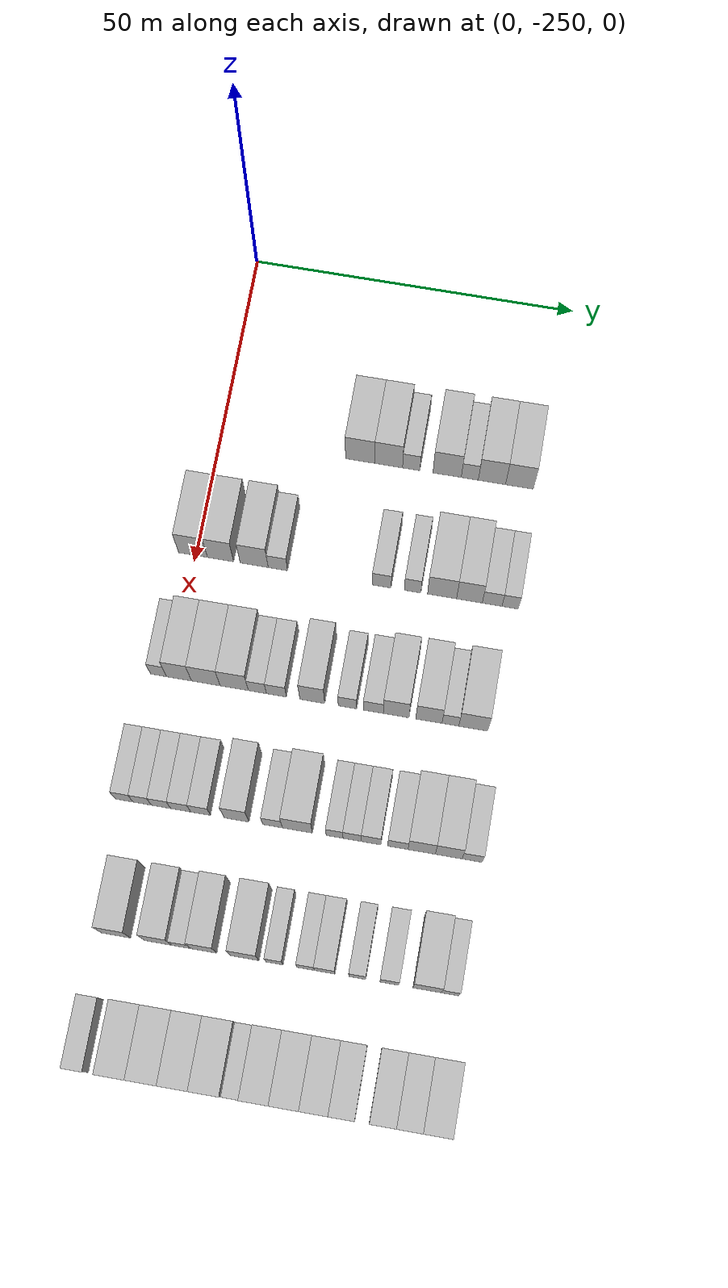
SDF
<sdf version="1.6">
 <world name="default">
  <model name="building_27">
   <static>1</static>
   <pose>25.0000 -228.3503 0 0.000000 0.000000 0.000000</pose>
   <link name="link">
    <pose>0 0 4.50 0 0 0</pose>
    <collision name="collision"><geometry><box><size>10.0000 4.4817 9.0000</size></box></geometry></collision>
    <visual name="visual">
     <cast_shadows>0</cast_shadows>
     <geometry><box><size>10.0000 4.4817 9.0000</size></box></geometry>
     <material>
      <script>
       <uri>model://HANNAS_wall/materials/scripts</uri>
       <uri>model://HANNAS_wall/materials/textures</uri>
       <name>vrc/HANNAS_wall</name>
      </script>
     </material>
    </visual>
   </link>
  </model>
  <model name="building_28">
   <static>1</static>
   <pose>25.0000 -223.9681 0 0.000000 0.000000 0.000000</pose>
   <link name="link">
    <pose>0 0 4.50 0 0 0</pose>
    <collision name="collision"><geometry><box><size>10.0000 4.2827 9.0000</size></box></geometry></collision>
    <visual name="visual">
     <cast_shadows>0</cast_shadows>
     <geometry><box><size>10.0000 4.2827 9.0000</size></box></geometry>
     <material>
      <script>
       <uri>model://HANNAS_wall/materials/scripts</uri>
       <uri>model://HANNAS_wall/materials/textures</uri>
       <name>vrc/HANNAS_wall</name>
      </script>
     </material>
    </visual>
   </link>
  </model>
  <model name="building_29">
   <static>1</static>
   <pose>25.0000 -220.4896 0 0.000000 0.000000 0.000000</pose>
   <link name="link">
    <pose>0 0 3.00 0 0 0</pose>
    <collision name="collision"><geometry><box><size>10.0000 2.6744 6.0000</size></box></geometry></collision>
    <visual name="visual">
     <cast_shadows>0</cast_shadows>
     <geometry><box><size>10.0000 2.6744 6.0000</size></box></geometry>
     <material>
      <script>
       <uri>model://HANNAS_wall/materials/scripts</uri>
       <uri>model://HANNAS_wall/materials/textures</uri>
       <name>vrc/HANNAS_wall</name>
      </script>
     </material>
    </visual>
   </link>
  </model>
  <model name="building_30">
   <static>1</static>
   <pose>25.0000 -214.9845 0 0.000000 0.000000 0.000000</pose>
   <link name="link">
    <pose>0 0 4.50 0 0 0</pose>
    <collision name="collision"><geometry><box><size>10.0000 4.3358 9.0000</size></box></geometry></collision>
    <visual name="visual">
     <cast_shadows>0</cast_shadows>
     <geometry><box><size>10.0000 4.3358 9.0000</size></box></geometry>
     <material>
      <script>
       <uri>model://HANNAS_wall/materials/scripts</uri>
       <uri>model://HANNAS_wall/materials/textures</uri>
       <name>vrc/HANNAS_wall</name>
      </script>
     </material>
    </visual>
   </link>
  </model>
  <model name="building_31">
   <static>1</static>
   <pose>25.0000 -211.5119 0 0.000000 0.000000 0.000000</pose>
   <link name="link">
    <pose>0 0 3.00 0 0 0</pose>
    <collision name="collision"><geometry><box><size>10.0000 2.6095 6.0000</size></box></geometry></collision>
    <visual name="visual">
     <cast_shadows>0</cast_shadows>
     <geometry><box><size>10.0000 2.6095 6.0000</size></box></geometry>
     <material>
      <script>
       <uri>model://HANNAS_wall/materials/scripts</uri>
       <uri>model://HANNAS_wall/materials/textures</uri>
       <name>vrc/HANNAS_wall</name>
      </script>
     </material>
    </visual>
   </link>
  </model>
  <model name="building_32">
   <static>1</static>
   <pose>25.0000 -208.1215 0 0.000000 0.000000 0.000000</pose>
   <link name="link">
    <pose>0 0 4.50 0 0 0</pose>
    <collision name="collision"><geometry><box><size>10.0000 4.1712 9.0000</size></box></geometry></collision>
    <visual name="visual">
     <cast_shadows>0</cast_shadows>
     <geometry><box><size>10.0000 4.1712 9.0000</size></box></geometry>
     <material>
      <script>
       <uri>model://HANNAS_wall/materials/scripts</uri>
       <uri>model://HANNAS_wall/materials/textures</uri>
       <name>vrc/HANNAS_wall</name>
      </script>
     </material>
    </visual>
   </link>
  </model>
  <model name="building_33">
   <static>1</static>
   <pose>25.0000 -203.9128 0 0.000000 0.000000 0.000000</pose>
   <link name="link">
    <pose>0 0 4.50 0 0 0</pose>
    <collision name="collision"><geometry><box><size>10.0000 4.2463 9.0000</size></box></geometry></collision>
    <visual name="visual">
     <cast_shadows>0</cast_shadows>
     <geometry><box><size>10.0000 4.2463 9.0000</size></box></geometry>
     <material>
      <script>
       <uri>model://HANNAS_wall/materials/scripts</uri>
       <uri>model://HANNAS_wall/materials/textures</uri>
       <name>vrc/HANNAS_wall</name>
      </script>
     </material>
    </visual>
   </link>
  </model>
  <model name="building_186">
   <static>1</static>
   <pose>44.0000 -250.4299 0 0.000000 0.000000 0.000000</pose>
   <link name="link">
    <pose>0 0 4.50 0 0 0</pose>
    <collision name="collision"><geometry><box><size>10.0000 4.3926 9.0000</size></box></geometry></collision>
    <visual name="visual">
     <cast_shadows>0</cast_shadows>
     <geometry><box><size>10.0000 4.3926 9.0000</size></box></geometry>
     <material>
      <script>
       <uri>model://HANNAS_wall/materials/scripts</uri>
       <uri>model://HANNAS_wall/materials/textures</uri>
       <name>vrc/HANNAS_wall</name>
      </script>
     </material>
    </visual>
   </link>
  </model>
  <model name="building_187">
   <static>1</static>
   <pose>44.0000 -246.2320 0 0.000000 0.000000 0.000000</pose>
   <link name="link">
    <pose>0 0 4.50 0 0 0</pose>
    <collision name="collision"><geometry><box><size>10.0000 4.0034 9.0000</size></box></geometry></collision>
    <visual name="visual">
     <cast_shadows>0</cast_shadows>
     <geometry><box><size>10.0000 4.0034 9.0000</size></box></geometry>
     <material>
      <script>
       <uri>model://HANNAS_wall/materials/scripts</uri>
       <uri>model://HANNAS_wall/materials/textures</uri>
       <name>vrc/HANNAS_wall</name>
      </script>
     </material>
    </visual>
   </link>
  </model>
  <model name="building_188">
   <static>1</static>
   <pose>44.0000 -241.1013 0 0.000000 0.000000 0.000000</pose>
   <link name="link">
    <pose>0 0 4.50 0 0 0</pose>
    <collision name="collision"><geometry><box><size>10.0000 4.2579 9.0000</size></box></geometry></collision>
    <visual name="visual">
     <cast_shadows>0</cast_shadows>
     <geometry><box><size>10.0000 4.2579 9.0000</size></box></geometry>
     <material>
      <script>
       <uri>model://HANNAS_wall/materials/scripts</uri>
       <uri>model://HANNAS_wall/materials/textures</uri>
       <name>vrc/HANNAS_wall</name>
      </script>
     </material>
    </visual>
   </link>
  </model>
  <model name="building_189">
   <static>1</static>
   <pose>44.0000 -237.5055 0 0.000000 0.000000 0.000000</pose>
   <link name="link">
    <pose>0 0 3.00 0 0 0</pose>
    <collision name="collision"><geometry><box><size>10.0000 2.9337 6.0000</size></box></geometry></collision>
    <visual name="visual">
     <cast_shadows>0</cast_shadows>
     <geometry><box><size>10.0000 2.9337 6.0000</size></box></geometry>
     <material>
      <script>
       <uri>model://HANNAS_wall/materials/scripts</uri>
       <uri>model://HANNAS_wall/materials/textures</uri>
       <name>vrc/HANNAS_wall</name>
      </script>
     </material>
    </visual>
   </link>
  </model>
  <model name="building_190">
   <static>1</static>
   <pose>44.0000 -221.7880 0 0.000000 0.000000 0.000000</pose>
   <link name="link">
    <pose>0 0 3.00 0 0 0</pose>
    <collision name="collision"><geometry><box><size>10.0000 2.8338 6.0000</size></box></geometry></collision>
    <visual name="visual">
     <cast_shadows>0</cast_shadows>
     <geometry><box><size>10.0000 2.8338 6.0000</size></box></geometry>
     <material>
      <script>
       <uri>model://HANNAS_wall/materials/scripts</uri>
       <uri>model://HANNAS_wall/materials/textures</uri>
       <name>vrc/HANNAS_wall</name>
      </script>
     </material>
    </visual>
   </link>
  </model>
  <model name="building_191">
   <static>1</static>
   <pose>44.0000 -217.1230 0 0.000000 0.000000 0.000000</pose>
   <link name="link">
    <pose>0 0 3.00 0 0 0</pose>
    <collision name="collision"><geometry><box><size>10.0000 2.4964 6.0000</size></box></geometry></collision>
    <visual name="visual">
     <cast_shadows>0</cast_shadows>
     <geometry><box><size>10.0000 2.4964 6.0000</size></box></geometry>
     <material>
      <script>
       <uri>model://HANNAS_wall/materials/scripts</uri>
       <uri>model://HANNAS_wall/materials/textures</uri>
       <name>vrc/HANNAS_wall</name>
      </script>
     </material>
    </visual>
   </link>
  </model>
  <model name="building_192">
   <static>1</static>
   <pose>44.0000 -212.6909 0 0.000000 0.000000 0.000000</pose>
   <link name="link">
    <pose>0 0 4.50 0 0 0</pose>
    <collision name="collision"><geometry><box><size>10.0000 4.3679 9.0000</size></box></geometry></collision>
    <visual name="visual">
     <cast_shadows>0</cast_shadows>
     <geometry><box><size>10.0000 4.3679 9.0000</size></box></geometry>
     <material>
      <script>
       <uri>model://HANNAS_wall/materials/scripts</uri>
       <uri>model://HANNAS_wall/materials/textures</uri>
       <name>vrc/HANNAS_wall</name>
      </script>
     </material>
    </visual>
   </link>
  </model>
  <model name="building_193">
   <static>1</static>
   <pose>44.0000 -208.5768 0 0.000000 0.000000 0.000000</pose>
   <link name="link">
    <pose>0 0 4.50 0 0 0</pose>
    <collision name="collision"><geometry><box><size>10.0000 3.8603 9.0000</size></box></geometry></collision>
    <visual name="visual">
     <cast_shadows>0</cast_shadows>
     <geometry><box><size>10.0000 3.8603 9.0000</size></box></geometry>
     <material>
      <script>
       <uri>model://HANNAS_wall/materials/scripts</uri>
       <uri>model://HANNAS_wall/materials/textures</uri>
       <name>vrc/HANNAS_wall</name>
      </script>
     </material>
    </visual>
   </link>
  </model>
  <model name="building_194">
   <static>1</static>
   <pose>44.0000 -205.1648 0 0.000000 0.000000 0.000000</pose>
   <link name="link">
    <pose>0 0 3.00 0 0 0</pose>
    <collision name="collision"><geometry><box><size>10.0000 2.9637 6.0000</size></box></geometry></collision>
    <visual name="visual">
     <cast_shadows>0</cast_shadows>
     <geometry><box><size>10.0000 2.9637 6.0000</size></box></geometry>
     <material>
      <script>
       <uri>model://HANNAS_wall/materials/scripts</uri>
       <uri>model://HANNAS_wall/materials/textures</uri>
       <name>vrc/HANNAS_wall</name>
      </script>
     </material>
    </visual>
   </link>
  </model>
  <model name="building_195">
   <static>1</static>
   <pose>44.0000 -202.4571 0 0.000000 0.000000 0.000000</pose>
   <link name="link">
    <pose>0 0 3.00 0 0 0</pose>
    <collision name="collision"><geometry><box><size>10.0000 2.4517 6.0000</size></box></geometry></collision>
    <visual name="visual">
     <cast_shadows>0</cast_shadows>
     <geometry><box><size>10.0000 2.4517 6.0000</size></box></geometry>
     <material>
      <script>
       <uri>model://HANNAS_wall/materials/scripts</uri>
       <uri>model://HANNAS_wall/materials/textures</uri>
       <name>vrc/HANNAS_wall</name>
      </script>
     </material>
    </visual>
   </link>
  </model>
  <model name="building_359">
   <static>1</static>
   <pose>63.0000 -251.7910 0 0.000000 0.000000 0.000000</pose>
   <link name="link">
    <pose>0 0 3.00 0 0 0</pose>
    <collision name="collision"><geometry><box><size>10.0000 2.4022 6.0000</size></box></geometry></collision>
    <visual name="visual">
     <cast_shadows>0</cast_shadows>
     <geometry><box><size>10.0000 2.4022 6.0000</size></box></geometry>
     <material>
      <script>
       <uri>model://HANNAS_wall/materials/scripts</uri>
       <uri>model://HANNAS_wall/materials/textures</uri>
       <name>vrc/HANNAS_wall</name>
      </script>
     </material>
    </visual>
   </link>
  </model>
  <model name="building_360">
   <static>1</static>
   <pose>63.0000 -248.7264 0 0.000000 0.000000 0.000000</pose>
   <link name="link">
    <pose>0 0 4.50 0 0 0</pose>
    <collision name="collision"><geometry><box><size>10.0000 3.7270 9.0000</size></box></geometry></collision>
    <visual name="visual">
     <cast_shadows>0</cast_shadows>
     <geometry><box><size>10.0000 3.7270 9.0000</size></box></geometry>
     <material>
      <script>
       <uri>model://HANNAS_wall/materials/scripts</uri>
       <uri>model://HANNAS_wall/materials/textures</uri>
       <name>vrc/HANNAS_wall</name>
      </script>
     </material>
    </visual>
   </link>
  </model>
  <model name="building_361">
   <static>1</static>
   <pose>63.0000 -244.7163 0 0.000000 0.000000 0.000000</pose>
   <link name="link">
    <pose>0 0 4.50 0 0 0</pose>
    <collision name="collision"><geometry><box><size>10.0000 4.2932 9.0000</size></box></geometry></collision>
    <visual name="visual">
     <cast_shadows>0</cast_shadows>
     <geometry><box><size>10.0000 4.2932 9.0000</size></box></geometry>
     <material>
      <script>
       <uri>model://HANNAS_wall/materials/scripts</uri>
       <uri>model://HANNAS_wall/materials/textures</uri>
       <name>vrc/HANNAS_wall</name>
      </script>
     </material>
    </visual>
   </link>
  </model>
  <model name="building_362">
   <static>1</static>
   <pose>63.0000 -240.4635 0 0.000000 0.000000 0.000000</pose>
   <link name="link">
    <pose>0 0 4.50 0 0 0</pose>
    <collision name="collision"><geometry><box><size>10.0000 4.2123 9.0000</size></box></geometry></collision>
    <visual name="visual">
     <cast_shadows>0</cast_shadows>
     <geometry><box><size>10.0000 4.2123 9.0000</size></box></geometry>
     <material>
      <script>
       <uri>model://HANNAS_wall/materials/scripts</uri>
       <uri>model://HANNAS_wall/materials/textures</uri>
       <name>vrc/HANNAS_wall</name>
      </script>
     </material>
    </visual>
   </link>
  </model>
  <model name="building_363">
   <static>1</static>
   <pose>63.0000 -237.0036 0 0.000000 0.000000 0.000000</pose>
   <link name="link">
    <pose>0 0 3.00 0 0 0</pose>
    <collision name="collision"><geometry><box><size>10.0000 2.7074 6.0000</size></box></geometry></collision>
    <visual name="visual">
     <cast_shadows>0</cast_shadows>
     <geometry><box><size>10.0000 2.7074 6.0000</size></box></geometry>
     <material>
      <script>
       <uri>model://HANNAS_wall/materials/scripts</uri>
       <uri>model://HANNAS_wall/materials/textures</uri>
       <name>vrc/HANNAS_wall</name>
      </script>
     </material>
    </visual>
   </link>
  </model>
  <model name="building_364">
   <static>1</static>
   <pose>63.0000 -234.1685 0 0.000000 0.000000 0.000000</pose>
   <link name="link">
    <pose>0 0 3.00 0 0 0</pose>
    <collision name="collision"><geometry><box><size>10.0000 2.9629 6.0000</size></box></geometry></collision>
    <visual name="visual">
     <cast_shadows>0</cast_shadows>
     <geometry><box><size>10.0000 2.9629 6.0000</size></box></geometry>
     <material>
      <script>
       <uri>model://HANNAS_wall/materials/scripts</uri>
       <uri>model://HANNAS_wall/materials/textures</uri>
       <name>vrc/HANNAS_wall</name>
      </script>
     </material>
    </visual>
   </link>
  </model>
  <model name="building_365">
   <static>1</static>
   <pose>63.0000 -228.8350 0 0.000000 0.000000 0.000000</pose>
   <link name="link">
    <pose>0 0 4.50 0 0 0</pose>
    <collision name="collision"><geometry><box><size>10.0000 3.7043 9.0000</size></box></geometry></collision>
    <visual name="visual">
     <cast_shadows>0</cast_shadows>
     <geometry><box><size>10.0000 3.7043 9.0000</size></box></geometry>
     <material>
      <script>
       <uri>model://HANNAS_wall/materials/scripts</uri>
       <uri>model://HANNAS_wall/materials/textures</uri>
       <name>vrc/HANNAS_wall</name>
      </script>
     </material>
    </visual>
   </link>
  </model>
  <model name="building_366">
   <static>1</static>
   <pose>63.0000 -223.6137 0 0.000000 0.000000 0.000000</pose>
   <link name="link">
    <pose>0 0 3.00 0 0 0</pose>
    <collision name="collision"><geometry><box><size>10.0000 2.7382 6.0000</size></box></geometry></collision>
    <visual name="visual">
     <cast_shadows>0</cast_shadows>
     <geometry><box><size>10.0000 2.7382 6.0000</size></box></geometry>
     <material>
      <script>
       <uri>model://HANNAS_wall/materials/scripts</uri>
       <uri>model://HANNAS_wall/materials/textures</uri>
       <name>vrc/HANNAS_wall</name>
      </script>
     </material>
    </visual>
   </link>
  </model>
  <model name="building_367">
   <static>1</static>
   <pose>63.0000 -219.7744 0 0.000000 0.000000 0.000000</pose>
   <link name="link">
    <pose>0 0 3.00 0 0 0</pose>
    <collision name="collision"><geometry><box><size>10.0000 2.9405 6.0000</size></box></geometry></collision>
    <visual name="visual">
     <cast_shadows>0</cast_shadows>
     <geometry><box><size>10.0000 2.9405 6.0000</size></box></geometry>
     <material>
      <script>
       <uri>model://HANNAS_wall/materials/scripts</uri>
       <uri>model://HANNAS_wall/materials/textures</uri>
       <name>vrc/HANNAS_wall</name>
      </script>
     </material>
    </visual>
   </link>
  </model>
  <model name="building_368">
   <static>1</static>
   <pose>63.0000 -216.3994 0 0.000000 0.000000 0.000000</pose>
   <link name="link">
    <pose>0 0 4.50 0 0 0</pose>
    <collision name="collision"><geometry><box><size>10.0000 3.8093 9.0000</size></box></geometry></collision>
    <visual name="visual">
     <cast_shadows>0</cast_shadows>
     <geometry><box><size>10.0000 3.8093 9.0000</size></box></geometry>
     <material>
      <script>
       <uri>model://HANNAS_wall/materials/scripts</uri>
       <uri>model://HANNAS_wall/materials/textures</uri>
       <name>vrc/HANNAS_wall</name>
      </script>
     </material>
    </visual>
   </link>
  </model>
  <model name="building_369">
   <static>1</static>
   <pose>63.0000 -211.5599 0 0.000000 0.000000 0.000000</pose>
   <link name="link">
    <pose>0 0 4.50 0 0 0</pose>
    <collision name="collision"><geometry><box><size>10.0000 3.8696 9.0000</size></box></geometry></collision>
    <visual name="visual">
     <cast_shadows>0</cast_shadows>
     <geometry><box><size>10.0000 3.8696 9.0000</size></box></geometry>
     <material>
      <script>
       <uri>model://HANNAS_wall/materials/scripts</uri>
       <uri>model://HANNAS_wall/materials/textures</uri>
       <name>vrc/HANNAS_wall</name>
      </script>
     </material>
    </visual>
   </link>
  </model>
  <model name="building_370">
   <static>1</static>
   <pose>63.0000 -208.3855 0 0.000000 0.000000 0.000000</pose>
   <link name="link">
    <pose>0 0 3.00 0 0 0</pose>
    <collision name="collision"><geometry><box><size>10.0000 2.4792 6.0000</size></box></geometry></collision>
    <visual name="visual">
     <cast_shadows>0</cast_shadows>
     <geometry><box><size>10.0000 2.4792 6.0000</size></box></geometry>
     <material>
      <script>
       <uri>model://HANNAS_wall/materials/scripts</uri>
       <uri>model://HANNAS_wall/materials/textures</uri>
       <name>vrc/HANNAS_wall</name>
      </script>
     </material>
    </visual>
   </link>
  </model>
  <model name="building_371">
   <static>1</static>
   <pose>63.0000 -205.0260 0 0.000000 0.000000 0.000000</pose>
   <link name="link">
    <pose>0 0 4.50 0 0 0</pose>
    <collision name="collision"><geometry><box><size>10.0000 4.2399 9.0000</size></box></geometry></collision>
    <visual name="visual">
     <cast_shadows>0</cast_shadows>
     <geometry><box><size>10.0000 4.2399 9.0000</size></box></geometry>
     <material>
      <script>
       <uri>model://HANNAS_wall/materials/scripts</uri>
       <uri>model://HANNAS_wall/materials/textures</uri>
       <name>vrc/HANNAS_wall</name>
      </script>
     </material>
    </visual>
   </link>
  </model>
  <model name="building_542">
   <static>1</static>
   <pose>82.0000 -252.9300 0 0.000000 0.000000 0.000000</pose>
   <link name="link">
    <pose>0 0 3.00 0 0 0</pose>
    <collision name="collision"><geometry><box><size>10.0000 2.6161 6.0000</size></box></geometry></collision>
    <visual name="visual">
     <cast_shadows>0</cast_shadows>
     <geometry><box><size>10.0000 2.6161 6.0000</size></box></geometry>
     <material>
      <script>
       <uri>model://HANNAS_wall/materials/scripts</uri>
       <uri>model://HANNAS_wall/materials/textures</uri>
       <name>vrc/HANNAS_wall</name>
      </script>
     </material>
    </visual>
   </link>
  </model>
  <model name="building_543">
   <static>1</static>
   <pose>82.0000 -250.2727 0 0.000000 0.000000 0.000000</pose>
   <link name="link">
    <pose>0 0 3.00 0 0 0</pose>
    <collision name="collision"><geometry><box><size>10.0000 2.6985 6.0000</size></box></geometry></collision>
    <visual name="visual">
     <cast_shadows>0</cast_shadows>
     <geometry><box><size>10.0000 2.6985 6.0000</size></box></geometry>
     <material>
      <script>
       <uri>model://HANNAS_wall/materials/scripts</uri>
       <uri>model://HANNAS_wall/materials/textures</uri>
       <name>vrc/HANNAS_wall</name>
      </script>
     </material>
    </visual>
   </link>
  </model>
  <model name="building_544">
   <static>1</static>
   <pose>82.0000 -247.5100 0 0.000000 0.000000 0.000000</pose>
   <link name="link">
    <pose>0 0 3.00 0 0 0</pose>
    <collision name="collision"><geometry><box><size>10.0000 2.8269 6.0000</size></box></geometry></collision>
    <visual name="visual">
     <cast_shadows>0</cast_shadows>
     <geometry><box><size>10.0000 2.8269 6.0000</size></box></geometry>
     <material>
      <script>
       <uri>model://HANNAS_wall/materials/scripts</uri>
       <uri>model://HANNAS_wall/materials/textures</uri>
       <name>vrc/HANNAS_wall</name>
      </script>
     </material>
    </visual>
   </link>
  </model>
  <model name="building_545">
   <static>1</static>
   <pose>82.0000 -244.6274 0 0.000000 0.000000 0.000000</pose>
   <link name="link">
    <pose>0 0 3.00 0 0 0</pose>
    <collision name="collision"><geometry><box><size>10.0000 2.9383 6.0000</size></box></geometry></collision>
    <visual name="visual">
     <cast_shadows>0</cast_shadows>
     <geometry><box><size>10.0000 2.9383 6.0000</size></box></geometry>
     <material>
      <script>
       <uri>model://HANNAS_wall/materials/scripts</uri>
       <uri>model://HANNAS_wall/materials/textures</uri>
       <name>vrc/HANNAS_wall</name>
      </script>
     </material>
    </visual>
   </link>
  </model>
  <model name="building_546">
   <static>1</static>
   <pose>82.0000 -241.7066 0 0.000000 0.000000 0.000000</pose>
   <link name="link">
    <pose>0 0 3.00 0 0 0</pose>
    <collision name="collision"><geometry><box><size>10.0000 2.9033 6.0000</size></box></geometry></collision>
    <visual name="visual">
     <cast_shadows>0</cast_shadows>
     <geometry><box><size>10.0000 2.9033 6.0000</size></box></geometry>
     <material>
      <script>
       <uri>model://HANNAS_wall/materials/scripts</uri>
       <uri>model://HANNAS_wall/materials/textures</uri>
       <name>vrc/HANNAS_wall</name>
      </script>
     </material>
    </visual>
   </link>
  </model>
  <model name="building_547">
   <static>1</static>
   <pose>82.0000 -236.4357 0 0.000000 0.000000 0.000000</pose>
   <link name="link">
    <pose>0 0 4.50 0 0 0</pose>
    <collision name="collision"><geometry><box><size>10.0000 3.6385 9.0000</size></box></geometry></collision>
    <visual name="visual">
     <cast_shadows>0</cast_shadows>
     <geometry><box><size>10.0000 3.6385 9.0000</size></box></geometry>
     <material>
      <script>
       <uri>model://HANNAS_wall/materials/scripts</uri>
       <uri>model://HANNAS_wall/materials/textures</uri>
       <name>vrc/HANNAS_wall</name>
      </script>
     </material>
    </visual>
   </link>
  </model>
  <model name="building_548">
   <static>1</static>
   <pose>82.0000 -231.1821 0 0.000000 0.000000 0.000000</pose>
   <link name="link">
    <pose>0 0 3.00 0 0 0</pose>
    <collision name="collision"><geometry><box><size>10.0000 2.8688 6.0000</size></box></geometry></collision>
    <visual name="visual">
     <cast_shadows>0</cast_shadows>
     <geometry><box><size>10.0000 2.8688 6.0000</size></box></geometry>
     <material>
      <script>
       <uri>model://HANNAS_wall/materials/scripts</uri>
       <uri>model://HANNAS_wall/materials/textures</uri>
       <name>vrc/HANNAS_wall</name>
      </script>
     </material>
    </visual>
   </link>
  </model>
  <model name="building_549">
   <static>1</static>
   <pose>82.0000 -227.5535 0 0.000000 0.000000 0.000000</pose>
   <link name="link">
    <pose>0 0 4.50 0 0 0</pose>
    <collision name="collision"><geometry><box><size>10.0000 4.3884 9.0000</size></box></geometry></collision>
    <visual name="visual">
     <cast_shadows>0</cast_shadows>
     <geometry><box><size>10.0000 4.3884 9.0000</size></box></geometry>
     <material>
      <script>
       <uri>model://HANNAS_wall/materials/scripts</uri>
       <uri>model://HANNAS_wall/materials/textures</uri>
       <name>vrc/HANNAS_wall</name>
      </script>
     </material>
    </visual>
   </link>
  </model>
  <model name="building_550">
   <static>1</static>
   <pose>82.0000 -222.1337 0 0.000000 0.000000 0.000000</pose>
   <link name="link">
    <pose>0 0 3.00 0 0 0</pose>
    <collision name="collision"><geometry><box><size>10.0000 2.4512 6.0000</size></box></geometry></collision>
    <visual name="visual">
     <cast_shadows>0</cast_shadows>
     <geometry><box><size>10.0000 2.4512 6.0000</size></box></geometry>
     <material>
      <script>
       <uri>model://HANNAS_wall/materials/scripts</uri>
       <uri>model://HANNAS_wall/materials/textures</uri>
       <name>vrc/HANNAS_wall</name>
      </script>
     </material>
    </visual>
   </link>
  </model>
  <model name="building_551">
   <static>1</static>
   <pose>82.0000 -219.5841 0 0.000000 0.000000 0.000000</pose>
   <link name="link">
    <pose>0 0 3.00 0 0 0</pose>
    <collision name="collision"><geometry><box><size>10.0000 2.6479 6.0000</size></box></geometry></collision>
    <visual name="visual">
     <cast_shadows>0</cast_shadows>
     <geometry><box><size>10.0000 2.6479 6.0000</size></box></geometry>
     <material>
      <script>
       <uri>model://HANNAS_wall/materials/scripts</uri>
       <uri>model://HANNAS_wall/materials/textures</uri>
       <name>vrc/HANNAS_wall</name>
      </script>
     </material>
    </visual>
   </link>
  </model>
  <model name="building_552">
   <static>1</static>
   <pose>82.0000 -216.8375 0 0.000000 0.000000 0.000000</pose>
   <link name="link">
    <pose>0 0 3.00 0 0 0</pose>
    <collision name="collision"><geometry><box><size>10.0000 2.8453 6.0000</size></box></geometry></collision>
    <visual name="visual">
     <cast_shadows>0</cast_shadows>
     <geometry><box><size>10.0000 2.8453 6.0000</size></box></geometry>
     <material>
      <script>
       <uri>model://HANNAS_wall/materials/scripts</uri>
       <uri>model://HANNAS_wall/materials/textures</uri>
       <name>vrc/HANNAS_wall</name>
      </script>
     </material>
    </visual>
   </link>
  </model>
  <model name="building_553">
   <static>1</static>
   <pose>82.0000 -212.9410 0 0.000000 0.000000 0.000000</pose>
   <link name="link">
    <pose>0 0 3.00 0 0 0</pose>
    <collision name="collision"><geometry><box><size>10.0000 2.9478 6.0000</size></box></geometry></collision>
    <visual name="visual">
     <cast_shadows>0</cast_shadows>
     <geometry><box><size>10.0000 2.9478 6.0000</size></box></geometry>
     <material>
      <script>
       <uri>model://HANNAS_wall/materials/scripts</uri>
       <uri>model://HANNAS_wall/materials/textures</uri>
       <name>vrc/HANNAS_wall</name>
      </script>
     </material>
    </visual>
   </link>
  </model>
  <model name="building_554">
   <static>1</static>
   <pose>82.0000 -209.4996 0 0.000000 0.000000 0.000000</pose>
   <link name="link">
    <pose>0 0 4.50 0 0 0</pose>
    <collision name="collision"><geometry><box><size>10.0000 3.9349 9.0000</size></box></geometry></collision>
    <visual name="visual">
     <cast_shadows>0</cast_shadows>
     <geometry><box><size>10.0000 3.9349 9.0000</size></box></geometry>
     <material>
      <script>
       <uri>model://HANNAS_wall/materials/scripts</uri>
       <uri>model://HANNAS_wall/materials/textures</uri>
       <name>vrc/HANNAS_wall</name>
      </script>
     </material>
    </visual>
   </link>
  </model>
  <model name="building_555">
   <static>1</static>
   <pose>82.0000 -205.5911 0 0.000000 0.000000 0.000000</pose>
   <link name="link">
    <pose>0 0 4.50 0 0 0</pose>
    <collision name="collision"><geometry><box><size>10.0000 3.8821 9.0000</size></box></geometry></collision>
    <visual name="visual">
     <cast_shadows>0</cast_shadows>
     <geometry><box><size>10.0000 3.8821 9.0000</size></box></geometry>
     <material>
      <script>
       <uri>model://HANNAS_wall/materials/scripts</uri>
       <uri>model://HANNAS_wall/materials/textures</uri>
       <name>vrc/HANNAS_wall</name>
      </script>
     </material>
    </visual>
   </link>
  </model>
  <model name="building_556">
   <static>1</static>
   <pose>82.0000 -202.1858 0 0.000000 0.000000 0.000000</pose>
   <link name="link">
    <pose>0 0 3.00 0 0 0</pose>
    <collision name="collision"><geometry><box><size>10.0000 2.9286 6.0000</size></box></geometry></collision>
    <visual name="visual">
     <cast_shadows>0</cast_shadows>
     <geometry><box><size>10.0000 2.9286 6.0000</size></box></geometry>
     <material>
      <script>
       <uri>model://HANNAS_wall/materials/scripts</uri>
       <uri>model://HANNAS_wall/materials/textures</uri>
       <name>vrc/HANNAS_wall</name>
      </script>
     </material>
    </visual>
   </link>
  </model>
  <model name="building_727">
   <static>1</static>
   <pose>101.0000 -250.0972 0 0.000000 0.000000 0.000000</pose>
   <link name="link">
    <pose>0 0 4.50 0 0 0</pose>
    <collision name="collision"><geometry><box><size>10.0000 4.2188 9.0000</size></box></geometry></collision>
    <visual name="visual">
     <cast_shadows>0</cast_shadows>
     <geometry><box><size>10.0000 4.2188 9.0000</size></box></geometry>
     <material>
      <script>
       <uri>model://HANNAS_wall/materials/scripts</uri>
       <uri>model://HANNAS_wall/materials/textures</uri>
       <name>vrc/HANNAS_wall</name>
      </script>
     </material>
    </visual>
   </link>
  </model>
  <model name="building_728">
   <static>1</static>
   <pose>101.0000 -244.0225 0 0.000000 0.000000 0.000000</pose>
   <link name="link">
    <pose>0 0 4.50 0 0 0</pose>
    <collision name="collision"><geometry><box><size>10.0000 3.9306 9.0000</size></box></geometry></collision>
    <visual name="visual">
     <cast_shadows>0</cast_shadows>
     <geometry><box><size>10.0000 3.9306 9.0000</size></box></geometry>
     <material>
      <script>
       <uri>model://HANNAS_wall/materials/scripts</uri>
       <uri>model://HANNAS_wall/materials/textures</uri>
       <name>vrc/HANNAS_wall</name>
      </script>
     </material>
    </visual>
   </link>
  </model>
  <model name="building_729">
   <static>1</static>
   <pose>101.0000 -240.6863 0 0.000000 0.000000 0.000000</pose>
   <link name="link">
    <pose>0 0 3.00 0 0 0</pose>
    <collision name="collision"><geometry><box><size>10.0000 2.7418 6.0000</size></box></geometry></collision>
    <visual name="visual">
     <cast_shadows>0</cast_shadows>
     <geometry><box><size>10.0000 2.7418 6.0000</size></box></geometry>
     <material>
      <script>
       <uri>model://HANNAS_wall/materials/scripts</uri>
       <uri>model://HANNAS_wall/materials/textures</uri>
       <name>vrc/HANNAS_wall</name>
      </script>
     </material>
    </visual>
   </link>
  </model>
  <model name="building_730">
   <static>1</static>
   <pose>101.0000 -237.4641 0 0.000000 0.000000 0.000000</pose>
   <link name="link">
    <pose>0 0 4.50 0 0 0</pose>
    <collision name="collision"><geometry><box><size>10.0000 3.7027 9.0000</size></box></geometry></collision>
    <visual name="visual">
     <cast_shadows>0</cast_shadows>
     <geometry><box><size>10.0000 3.7027 9.0000</size></box></geometry>
     <material>
      <script>
       <uri>model://HANNAS_wall/materials/scripts</uri>
       <uri>model://HANNAS_wall/materials/textures</uri>
       <name>vrc/HANNAS_wall</name>
      </script>
     </material>
    </visual>
   </link>
  </model>
  <model name="building_731">
   <static>1</static>
   <pose>101.0000 -231.5760 0 0.000000 0.000000 0.000000</pose>
   <link name="link">
    <pose>0 0 4.50 0 0 0</pose>
    <collision name="collision"><geometry><box><size>10.0000 4.0734 9.0000</size></box></geometry></collision>
    <visual name="visual">
     <cast_shadows>0</cast_shadows>
     <geometry><box><size>10.0000 4.0734 9.0000</size></box></geometry>
     <material>
      <script>
       <uri>model://HANNAS_wall/materials/scripts</uri>
       <uri>model://HANNAS_wall/materials/textures</uri>
       <name>vrc/HANNAS_wall</name>
      </script>
     </material>
    </visual>
   </link>
  </model>
  <model name="building_732">
   <static>1</static>
   <pose>101.0000 -227.3141 0 0.000000 0.000000 0.000000</pose>
   <link name="link">
    <pose>0 0 3.00 0 0 0</pose>
    <collision name="collision"><geometry><box><size>10.0000 2.4505 6.0000</size></box></geometry></collision>
    <visual name="visual">
     <cast_shadows>0</cast_shadows>
     <geometry><box><size>10.0000 2.4505 6.0000</size></box></geometry>
     <material>
      <script>
       <uri>model://HANNAS_wall/materials/scripts</uri>
       <uri>model://HANNAS_wall/materials/textures</uri>
       <name>vrc/HANNAS_wall</name>
      </script>
     </material>
    </visual>
   </link>
  </model>
  <model name="building_733">
   <static>1</static>
   <pose>101.0000 -222.8553 0 0.000000 0.000000 0.000000</pose>
   <link name="link">
    <pose>0 0 3.00 0 0 0</pose>
    <collision name="collision"><geometry><box><size>10.0000 2.4670 6.0000</size></box></geometry></collision>
    <visual name="visual">
     <cast_shadows>0</cast_shadows>
     <geometry><box><size>10.0000 2.4670 6.0000</size></box></geometry>
     <material>
      <script>
       <uri>model://HANNAS_wall/materials/scripts</uri>
       <uri>model://HANNAS_wall/materials/textures</uri>
       <name>vrc/HANNAS_wall</name>
      </script>
     </material>
    </visual>
   </link>
  </model>
  <model name="building_734">
   <static>1</static>
   <pose>101.0000 -220.1638 0 0.000000 0.000000 0.000000</pose>
   <link name="link">
    <pose>0 0 3.00 0 0 0</pose>
    <collision name="collision"><geometry><box><size>10.0000 2.9160 6.0000</size></box></geometry></collision>
    <visual name="visual">
     <cast_shadows>0</cast_shadows>
     <geometry><box><size>10.0000 2.9160 6.0000</size></box></geometry>
     <material>
      <script>
       <uri>model://HANNAS_wall/materials/scripts</uri>
       <uri>model://HANNAS_wall/materials/textures</uri>
       <name>vrc/HANNAS_wall</name>
      </script>
     </material>
    </visual>
   </link>
  </model>
  <model name="building_735">
   <static>1</static>
   <pose>101.0000 -215.5017 0 0.000000 0.000000 0.000000</pose>
   <link name="link">
    <pose>0 0 3.00 0 0 0</pose>
    <collision name="collision"><geometry><box><size>10.0000 2.4082 6.0000</size></box></geometry></collision>
    <visual name="visual">
     <cast_shadows>0</cast_shadows>
     <geometry><box><size>10.0000 2.4082 6.0000</size></box></geometry>
     <material>
      <script>
       <uri>model://HANNAS_wall/materials/scripts</uri>
       <uri>model://HANNAS_wall/materials/textures</uri>
       <name>vrc/HANNAS_wall</name>
      </script>
     </material>
    </visual>
   </link>
  </model>
  <model name="building_736">
   <static>1</static>
   <pose>101.0000 -210.9495 0 0.000000 0.000000 0.000000</pose>
   <link name="link">
    <pose>0 0 3.00 0 0 0</pose>
    <collision name="collision"><geometry><box><size>10.0000 2.6962 6.0000</size></box></geometry></collision>
    <visual name="visual">
     <cast_shadows>0</cast_shadows>
     <geometry><box><size>10.0000 2.6962 6.0000</size></box></geometry>
     <material>
      <script>
       <uri>model://HANNAS_wall/materials/scripts</uri>
       <uri>model://HANNAS_wall/materials/textures</uri>
       <name>vrc/HANNAS_wall</name>
      </script>
     </material>
    </visual>
   </link>
  </model>
  <model name="building_737">
   <static>1</static>
   <pose>101.0000 -205.5848 0 0.000000 0.000000 0.000000</pose>
   <link name="link">
    <pose>0 0 4.50 0 0 0</pose>
    <collision name="collision"><geometry><box><size>10.0000 4.0332 9.0000</size></box></geometry></collision>
    <visual name="visual">
     <cast_shadows>0</cast_shadows>
     <geometry><box><size>10.0000 4.0332 9.0000</size></box></geometry>
     <material>
      <script>
       <uri>model://HANNAS_wall/materials/scripts</uri>
       <uri>model://HANNAS_wall/materials/textures</uri>
       <name>vrc/HANNAS_wall</name>
      </script>
     </material>
    </visual>
   </link>
  </model>
  <model name="building_738">
   <static>1</static>
   <pose>101.0000 -202.3214 0 0.000000 0.000000 0.000000</pose>
   <link name="link">
    <pose>0 0 3.00 0 0 0</pose>
    <collision name="collision"><geometry><box><size>10.0000 2.4935 6.0000</size></box></geometry></collision>
    <visual name="visual">
     <cast_shadows>0</cast_shadows>
     <geometry><box><size>10.0000 2.4935 6.0000</size></box></geometry>
     <material>
      <script>
       <uri>model://HANNAS_wall/materials/scripts</uri>
       <uri>model://HANNAS_wall/materials/textures</uri>
       <name>vrc/HANNAS_wall</name>
      </script>
     </material>
    </visual>
   </link>
  </model>
  <model name="building_907">
   <static>1</static>
   <pose>120.0000 -251.5015 0 0.000000 0.000000 0.000000</pose>
   <link name="link">
    <pose>0 0 3.00 0 0 0</pose>
    <collision name="collision"><geometry><box><size>10.0000 2.9865 6.0000</size></box></geometry></collision>
    <visual name="visual">
     <cast_shadows>0</cast_shadows>
     <geometry><box><size>10.0000 2.9865 6.0000</size></box></geometry>
     <material>
      <script>
       <uri>model://HANNAS_wall/materials/scripts</uri>
       <uri>model://HANNAS_wall/materials/textures</uri>
       <name>vrc/HANNAS_wall</name>
      </script>
     </material>
    </visual>
   </link>
  </model>
  <model name="building_908">
   <static>1</static>
   <pose>120.0000 -245.8720 0 0.000000 0.000000 0.000000</pose>
   <link name="link">
    <pose>0 0 4.50 0 0 0</pose>
    <collision name="collision"><geometry><box><size>10.0000 4.2725 9.0000</size></box></geometry></collision>
    <visual name="visual">
     <cast_shadows>0</cast_shadows>
     <geometry><box><size>10.0000 4.2725 9.0000</size></box></geometry>
     <material>
      <script>
       <uri>model://HANNAS_wall/materials/scripts</uri>
       <uri>model://HANNAS_wall/materials/textures</uri>
       <name>vrc/HANNAS_wall</name>
      </script>
     </material>
    </visual>
   </link>
  </model>
  <model name="building_909">
   <static>1</static>
   <pose>120.0000 -241.5573 0 0.000000 0.000000 0.000000</pose>
   <link name="link">
    <pose>0 0 4.50 0 0 0</pose>
    <collision name="collision"><geometry><box><size>10.0000 4.3569 9.0000</size></box></geometry></collision>
    <visual name="visual">
     <cast_shadows>0</cast_shadows>
     <geometry><box><size>10.0000 4.3569 9.0000</size></box></geometry>
     <material>
      <script>
       <uri>model://HANNAS_wall/materials/scripts</uri>
       <uri>model://HANNAS_wall/materials/textures</uri>
       <name>vrc/HANNAS_wall</name>
      </script>
     </material>
    </visual>
   </link>
  </model>
  <model name="building_910">
   <static>1</static>
   <pose>120.0000 -237.2688 0 0.000000 0.000000 0.000000</pose>
   <link name="link">
    <pose>0 0 4.50 0 0 0</pose>
    <collision name="collision"><geometry><box><size>10.0000 4.2201 9.0000</size></box></geometry></collision>
    <visual name="visual">
     <cast_shadows>0</cast_shadows>
     <geometry><box><size>10.0000 4.2201 9.0000</size></box></geometry>
     <material>
      <script>
       <uri>model://HANNAS_wall/materials/scripts</uri>
       <uri>model://HANNAS_wall/materials/textures</uri>
       <name>vrc/HANNAS_wall</name>
      </script>
     </material>
    </visual>
   </link>
  </model>
  <model name="building_911">
   <static>1</static>
   <pose>120.0000 -233.0191 0 0.000000 0.000000 0.000000</pose>
   <link name="link">
    <pose>0 0 4.50 0 0 0</pose>
    <collision name="collision"><geometry><box><size>10.0000 4.2792 9.0000</size></box></geometry></collision>
    <visual name="visual">
     <cast_shadows>0</cast_shadows>
     <geometry><box><size>10.0000 4.2792 9.0000</size></box></geometry>
     <material>
      <script>
       <uri>model://HANNAS_wall/materials/scripts</uri>
       <uri>model://HANNAS_wall/materials/textures</uri>
       <name>vrc/HANNAS_wall</name>
      </script>
     </material>
    </visual>
   </link>
  </model>
  <model name="building_912">
   <static>1</static>
   <pose>120.0000 -229.5833 0 0.000000 0.000000 0.000000</pose>
   <link name="link">
    <pose>0 0 3.00 0 0 0</pose>
    <collision name="collision"><geometry><box><size>10.0000 2.5924 6.0000</size></box></geometry></collision>
    <visual name="visual">
     <cast_shadows>0</cast_shadows>
     <geometry><box><size>10.0000 2.5924 6.0000</size></box></geometry>
     <material>
      <script>
       <uri>model://HANNAS_wall/materials/scripts</uri>
       <uri>model://HANNAS_wall/materials/textures</uri>
       <name>vrc/HANNAS_wall</name>
      </script>
     </material>
    </visual>
   </link>
  </model>
  <model name="building_913">
   <static>1</static>
   <pose>120.0000 -226.2446 0 0.000000 0.000000 0.000000</pose>
   <link name="link">
    <pose>0 0 4.50 0 0 0</pose>
    <collision name="collision"><geometry><box><size>10.0000 4.0850 9.0000</size></box></geometry></collision>
    <visual name="visual">
     <cast_shadows>0</cast_shadows>
     <geometry><box><size>10.0000 4.0850 9.0000</size></box></geometry>
     <material>
      <script>
       <uri>model://HANNAS_wall/materials/scripts</uri>
       <uri>model://HANNAS_wall/materials/textures</uri>
       <name>vrc/HANNAS_wall</name>
      </script>
     </material>
    </visual>
   </link>
  </model>
  <model name="building_914">
   <static>1</static>
   <pose>120.0000 -222.1487 0 0.000000 0.000000 0.000000</pose>
   <link name="link">
    <pose>0 0 4.50 0 0 0</pose>
    <collision name="collision"><geometry><box><size>10.0000 4.1067 9.0000</size></box></geometry></collision>
    <visual name="visual">
     <cast_shadows>0</cast_shadows>
     <geometry><box><size>10.0000 4.1067 9.0000</size></box></geometry>
     <material>
      <script>
       <uri>model://HANNAS_wall/materials/scripts</uri>
       <uri>model://HANNAS_wall/materials/textures</uri>
       <name>vrc/HANNAS_wall</name>
      </script>
     </material>
    </visual>
   </link>
  </model>
  <model name="building_915">
   <static>1</static>
   <pose>120.0000 -218.1176 0 0.000000 0.000000 0.000000</pose>
   <link name="link">
    <pose>0 0 4.50 0 0 0</pose>
    <collision name="collision"><geometry><box><size>10.0000 3.9556 9.0000</size></box></geometry></collision>
    <visual name="visual">
     <cast_shadows>0</cast_shadows>
     <geometry><box><size>10.0000 3.9556 9.0000</size></box></geometry>
     <material>
      <script>
       <uri>model://HANNAS_wall/materials/scripts</uri>
       <uri>model://HANNAS_wall/materials/textures</uri>
       <name>vrc/HANNAS_wall</name>
      </script>
     </material>
    </visual>
   </link>
  </model>
  <model name="building_916">
   <static>1</static>
   <pose>120.0000 -214.3370 0 0.000000 0.000000 0.000000</pose>
   <link name="link">
    <pose>0 0 4.50 0 0 0</pose>
    <collision name="collision"><geometry><box><size>10.0000 3.6055 9.0000</size></box></geometry></collision>
    <visual name="visual">
     <cast_shadows>0</cast_shadows>
     <geometry><box><size>10.0000 3.6055 9.0000</size></box></geometry>
     <material>
      <script>
       <uri>model://HANNAS_wall/materials/scripts</uri>
       <uri>model://HANNAS_wall/materials/textures</uri>
       <name>vrc/HANNAS_wall</name>
      </script>
     </material>
    </visual>
   </link>
  </model>
  <model name="building_917">
   <static>1</static>
   <pose>120.0000 -208.7074 0 0.000000 0.000000 0.000000</pose>
   <link name="link">
    <pose>0 0 4.50 0 0 0</pose>
    <collision name="collision"><geometry><box><size>10.0000 3.6536 9.0000</size></box></geometry></collision>
    <visual name="visual">
     <cast_shadows>0</cast_shadows>
     <geometry><box><size>10.0000 3.6536 9.0000</size></box></geometry>
     <material>
      <script>
       <uri>model://HANNAS_wall/materials/scripts</uri>
       <uri>model://HANNAS_wall/materials/textures</uri>
       <name>vrc/HANNAS_wall</name>
      </script>
     </material>
    </visual>
   </link>
  </model>
  <model name="building_918">
   <static>1</static>
   <pose>120.0000 -205.0755 0 0.000000 0.000000 0.000000</pose>
   <link name="link">
    <pose>0 0 4.50 0 0 0</pose>
    <collision name="collision"><geometry><box><size>10.0000 3.6103 9.0000</size></box></geometry></collision>
    <visual name="visual">
     <cast_shadows>0</cast_shadows>
     <geometry><box><size>10.0000 3.6103 9.0000</size></box></geometry>
     <material>
      <script>
       <uri>model://HANNAS_wall/materials/scripts</uri>
       <uri>model://HANNAS_wall/materials/textures</uri>
       <name>vrc/HANNAS_wall</name>
      </script>
     </material>
    </visual>
   </link>
  </model>
  <model name="building_919">
   <static>1</static>
   <pose>120.0000 -201.2496 0 0.000000 0.000000 0.000000</pose>
   <link name="link">
    <pose>0 0 4.50 0 0 0</pose>
    <collision name="collision"><geometry><box><size>10.0000 4.0414 9.0000</size></box></geometry></collision>
    <visual name="visual">
     <cast_shadows>0</cast_shadows>
     <geometry><box><size>10.0000 4.0414 9.0000</size></box></geometry>
     <material>
      <script>
       <uri>model://HANNAS_wall/materials/scripts</uri>
       <uri>model://HANNAS_wall/materials/textures</uri>
       <name>vrc/HANNAS_wall</name>
      </script>
     </material>
    </visual>
   </link>
  </model>
 </world>
</sdf>
